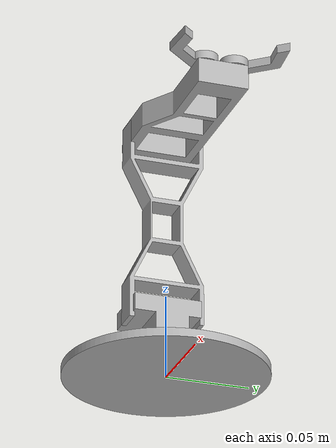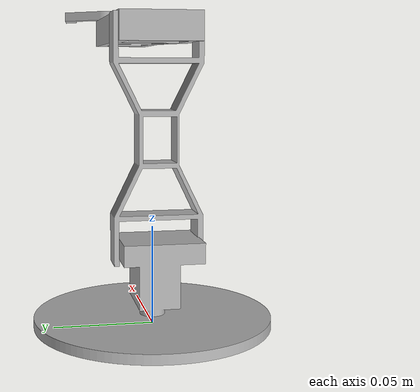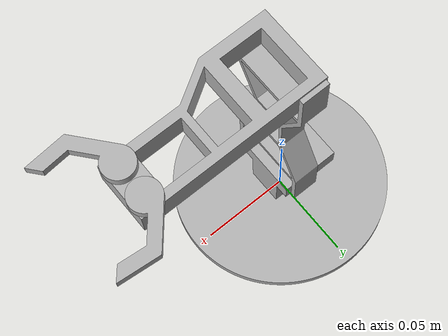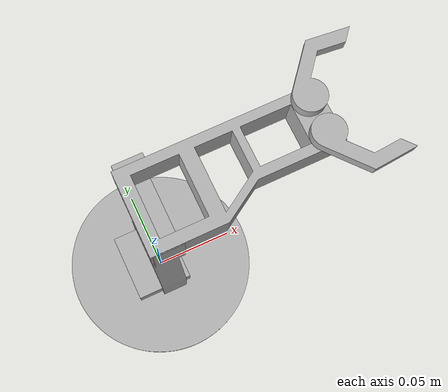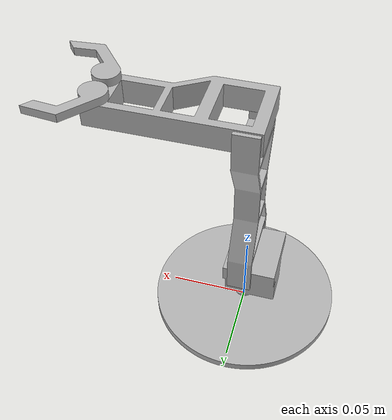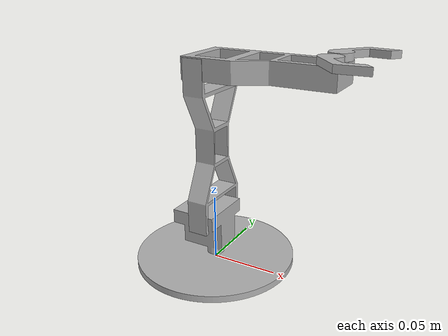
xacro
<?xml version="1.0"?>
<robot xmlns:xacro="http://www.ros.org/wiki/xacro" name="servox">
    <xacro:arg name="initial_positions_file" default="initial_positions.yaml" />

    <!-- Import servox urdf file -->
    <xacro:include filename="$(find servox_description)/urdf/servox.xacro" />

    <!-- Import control_xacro -->
    <xacro:include filename="servox.ros2_control.xacro" />

    <xacro:servox_ros2_control name="FakeSystem" initial_positions_file="$(arg initial_positions_file)"/>

</robot>

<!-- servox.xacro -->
<robot name="servox" xmlns:xacro="http://www.ros.org/wiki/xacro">

<xacro:include filename="$(find servox_description)/urdf/materials.xacro" />
<xacro:include filename="$(find servox_description)/urdf/servox.ros2control" />
<xacro:include filename="$(find servox_description)/urdf/servox.gazebo" />
<link name="base_link">
  <inertial>
    <origin xyz="2.0104246875423716e-17 0.0 0.0025000000000000005" rpy="0 0 0"/>
    <mass value="0.4439070419522376"/>
    <inertia ixx="0.0004" iyy="0.0004" izz="0.000799" ixy="0.0" iyz="0.0" ixz="0.0"/>
  </inertial>
  <visual>
    <origin xyz="0 0 0" rpy="0 0 0"/>
    <geometry>
      <mesh filename="file://$(find servox_description)/meshes/base_link.stl" scale="0.001 0.001 0.001"/>
    </geometry>
    <material name="silver"/>
  </visual>
  <collision>
    <origin xyz="0 0 0" rpy="0 0 0"/>
    <geometry>
      <mesh filename="file://$(find servox_description)/meshes/base_link.stl" scale="0.001 0.001 0.001"/>
    </geometry>
  </collision>
</link>

<link name="shoulder_link_1">
  <inertial>
    <origin xyz="-0.004821221242970385 -0.0011448943120997157 0.02583971703895212" rpy="0 0 0"/>
    <mass value="0.22741569326864364"/>
    <inertia ixx="4.2e-05" iyy="4.4e-05" izz="3.9e-05" ixy="-0.0" iyz="2e-06" ixz="1e-06"/>
  </inertial>
  <visual>
    <origin xyz="-0.0 -0.0 -0.005" rpy="0 0 0"/>
    <geometry>
      <mesh filename="file://$(find servox_description)/meshes/shoulder_link_1.stl" scale="0.001 0.001 0.001"/>
    </geometry>
    <material name="silver"/>
  </visual>
  <collision>
    <origin xyz="-0.0 -0.0 -0.005" rpy="0 0 0"/>
    <geometry>
      <mesh filename="file://$(find servox_description)/meshes/shoulder_link_1.stl" scale="0.001 0.001 0.001"/>
    </geometry>
  </collision>
</link>

<link name="upper_arm_link_1">
  <inertial>
    <origin xyz="0.0003055495531080344 -0.019760234565211515 0.054879229563259815" rpy="0 0 0"/>
    <mass value="0.1020848795823874"/>
    <inertia ixx="0.000161" iyy="0.000139" izz="2.7e-05" ixy="0.0" iyz="-1e-06" ixz="0.0"/>
  </inertial>
  <visual>
    <origin xyz="-0.00023 -0.0176 -0.039783" rpy="0 0 0"/>
    <geometry>
      <mesh filename="file://$(find servox_description)/meshes/upper_arm_link_1.stl" scale="0.001 0.001 0.001"/>
    </geometry>
    <material name="silver"/>
  </visual>
  <collision>
    <origin xyz="-0.00023 -0.0176 -0.039783" rpy="0 0 0"/>
    <geometry>
      <mesh filename="file://$(find servox_description)/meshes/upper_arm_link_1.stl" scale="0.001 0.001 0.001"/>
    </geometry>
  </collision>
</link>

<link name="fore_arm_link_1">
  <inertial>
    <origin xyz="0.04089105906990618 -0.018312262539509887 4.099476937996505e-06" rpy="0 0 0"/>
    <mass value="0.21744990656682445"/>
    <inertia ixx="4.1e-05" iyy="0.000235" izz="0.000268" ixy="-2e-05" iyz="-0.0" ixz="-0.0"/>
  </inertial>
  <visual>
    <origin xyz="-0.0 -0.0177 -0.15" rpy="0 0 0"/>
    <geometry>
      <mesh filename="file://$(find servox_description)/meshes/fore_arm_link_1.stl" scale="0.001 0.001 0.001"/>
    </geometry>
    <material name="silver"/>
  </visual>
  <collision>
    <origin xyz="-0.0 -0.0177 -0.15" rpy="0 0 0"/>
    <geometry>
      <mesh filename="file://$(find servox_description)/meshes/fore_arm_link_1.stl" scale="0.001 0.001 0.001"/>
    </geometry>
  </collision>
</link>

<link name="left_gripper_link_1">
  <inertial>
    <origin xyz="0.006711599071377958 0.009142007439031602 0.0025000000000000022" rpy="0 0 0"/>
    <mass value="0.016608858145375504"/>
    <inertia ixx="2e-06" iyy="1e-06" izz="3e-06" ixy="-1e-06" iyz="-0.0" ixz="0.0"/>
  </inertial>
  <visual>
    <origin xyz="-0.085077 -0.011519 -0.1576" rpy="0 0 0"/>
    <geometry>
      <mesh filename="file://$(find servox_description)/meshes/left_gripper_link_1.stl" scale="0.001 0.001 0.001"/>
    </geometry>
    <material name="silver"/>
  </visual>
  <collision>
    <origin xyz="-0.085077 -0.011519 -0.1576" rpy="0 0 0"/>
    <geometry>
      <mesh filename="file://$(find servox_description)/meshes/left_gripper_link_1.stl" scale="0.001 0.001 0.001"/>
    </geometry>
  </collision>
</link>

<link name="right_gripper_link_1">
  <inertial>
    <origin xyz="0.006673073283405578 -0.009075346203872573 0.0025000000000000022" rpy="0 0 0"/>
    <mass value="0.01673818232709913"/>
    <inertia ixx="2e-06" iyy="1e-06" izz="3e-06" ixy="1e-06" iyz="0.0" ixz="0.0"/>
  </inertial>
  <visual>
    <origin xyz="-0.084915 0.00652 -0.1576" rpy="0 0 0"/>
    <geometry>
      <mesh filename="file://$(find servox_description)/meshes/right_gripper_link_1.stl" scale="0.001 0.001 0.001"/>
    </geometry>
    <material name="silver"/>
  </visual>
  <collision>
    <origin xyz="-0.084915 0.00652 -0.1576" rpy="0 0 0"/>
    <geometry>
      <mesh filename="file://$(find servox_description)/meshes/right_gripper_link_1.stl" scale="0.001 0.001 0.001"/>
    </geometry>
  </collision>
</link>

<joint name="base_joint" type="revolute">
  <origin xyz="0.0 0.0 0.005" rpy="0 0 0"/>
  <parent link="base_link"/>
  <child link="shoulder_link_1"/>
  <axis xyz="0.0 0.0 1.0"/>
  <limit upper="1.5708" lower="-1.5708" effort="100" velocity="100"/>
</joint>

<joint name="shoulder_joint" type="revolute">
  <origin xyz="0.00023 0.0176 0.034783" rpy="0 0 0"/>
  <parent link="shoulder_link_1"/>
  <child link="upper_arm_link_1"/>
  <axis xyz="0.0 1.0 0.0"/>
  <limit upper="0.785398" lower="0.0" effort="100" velocity="100"/>
</joint>

<joint name="elbow_joint" type="revolute">
  <origin xyz="-0.00023 0.0001 0.110217" rpy="0 0 0"/>
  <parent link="upper_arm_link_1"/>
  <child link="fore_arm_link_1"/>
  <axis xyz="0.0 -1.0 0.0"/>
  <limit upper="1.396263" lower="-0.785398" effort="100" velocity="100"/>
</joint>

<joint name="wrist_left_joint" type="revolute">
  <origin xyz="0.085077 -0.006181 0.0076" rpy="0 0 0"/>
  <parent link="fore_arm_link_1"/>
  <child link="left_gripper_link_1"/>
  <axis xyz="0.0 0.0 1.0"/>
  <limit upper="0.0" lower="-0.85" effort="100" velocity="100"/>
  <mimic joint="wrist_right_joint" multiplier="-1" offset="0"/>
</joint>

<joint name="wrist_right_joint" type="revolute">
  <origin xyz="0.084915 -0.02422 0.0076" rpy="0 0 0"/>
  <parent link="fore_arm_link_1"/>
  <child link="right_gripper_link_1"/>
  <axis xyz="0.0 0.0 1.0"/>
  <limit upper="0.85" lower="0.00" effort="100" velocity="100"/>

</joint>

</robot>

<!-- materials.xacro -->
<robot name="servox" xmlns:xacro="http://www.ros.org/wiki/xacro" >

<material name="silver">
  <color rgba="0.700 0.700 0.700 1.000"/>
</material>

</robot>

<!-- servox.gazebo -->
<robot name="servox" xmlns:xacro="http://www.ros.org/wiki/xacro" >

<xacro:property name="body_color" value="Gazebo/Silver" />

<gazebo reference="base_link">
  <material>${body_color}</material>
  <mu1>0.2</mu1>
  <mu2>0.2</mu2>
  <self_collide>true</self_collide>
  <gravity>true</gravity>
</gazebo>

<gazebo reference="shoulder_link_1">
  <material>${body_color}</material>
  <mu1>0.2</mu1>
  <mu2>0.2</mu2>
  <self_collide>true</self_collide>
</gazebo>

<gazebo reference="upper_arm_link_1">
  <material>${body_color}</material>
  <mu1>0.2</mu1>
  <mu2>0.2</mu2>
  <self_collide>true</self_collide>
</gazebo>

<gazebo reference="fore_arm_link_1">
  <material>${body_color}</material>
  <mu1>0.2</mu1>
  <mu2>0.2</mu2>
  <self_collide>true</self_collide>
</gazebo>

<gazebo reference="left_gripper_link_1">
  <material>${body_color}</material>
  <mu1>0.2</mu1>
  <mu2>0.2</mu2>
  <self_collide>true</self_collide>
</gazebo>

<gazebo reference="right_gripper_link_1">
  <material>${body_color}</material>
  <mu1>0.2</mu1>
  <mu2>0.2</mu2>
  <self_collide>true</self_collide>
</gazebo>

</robot>
